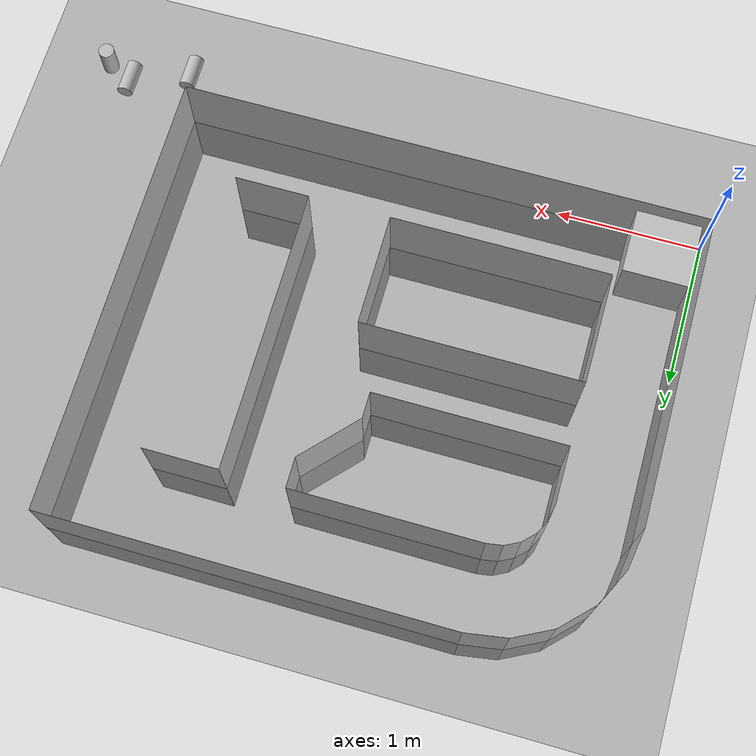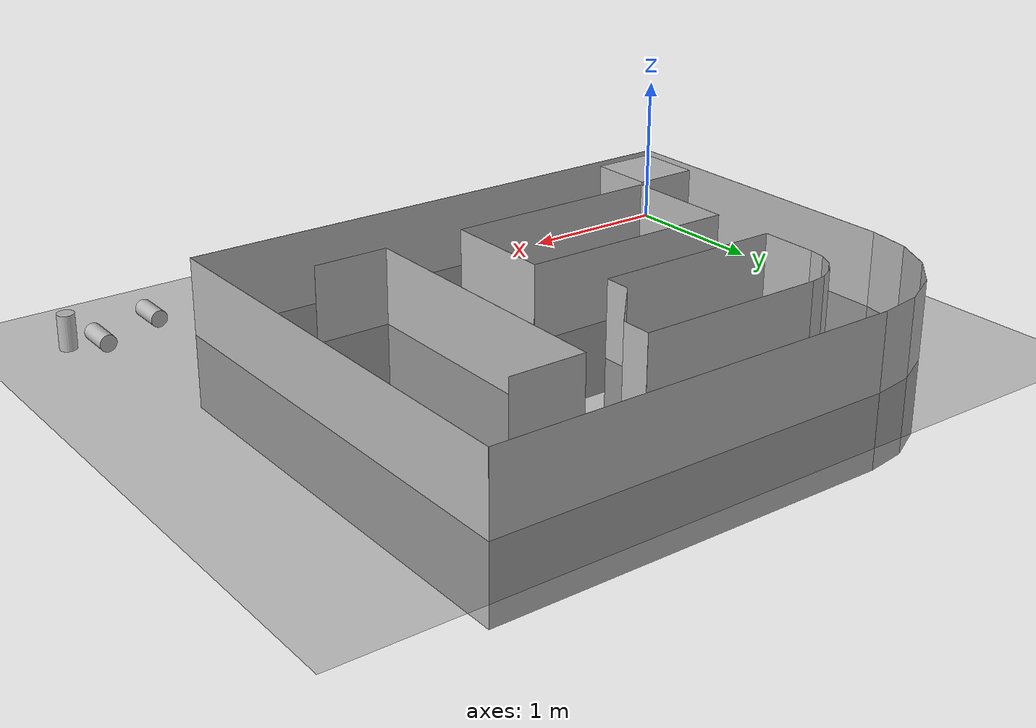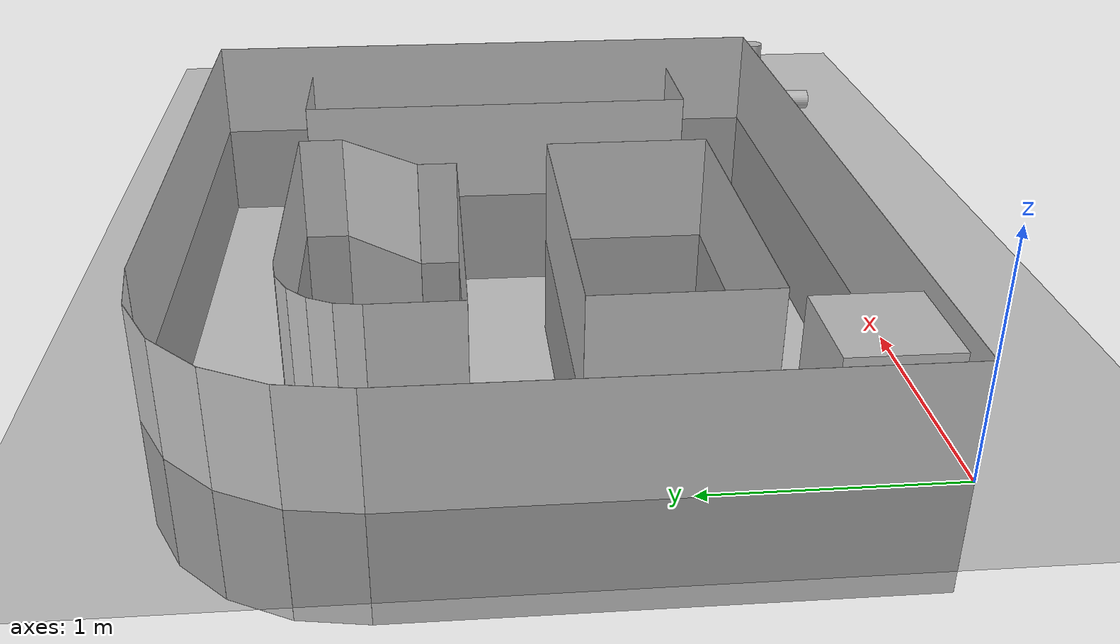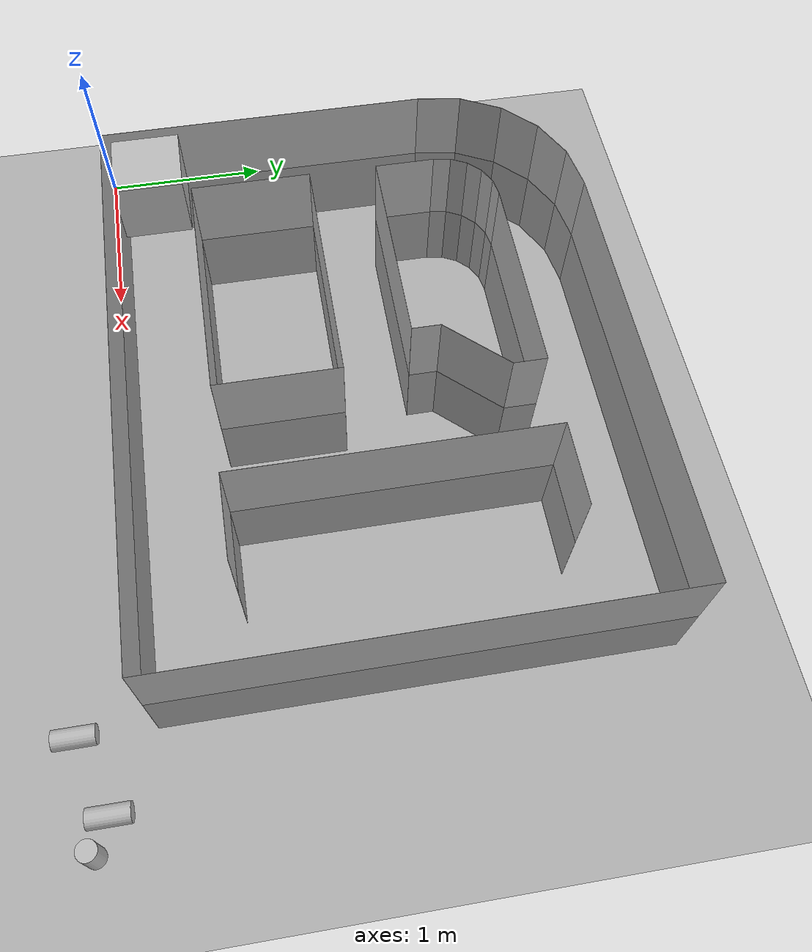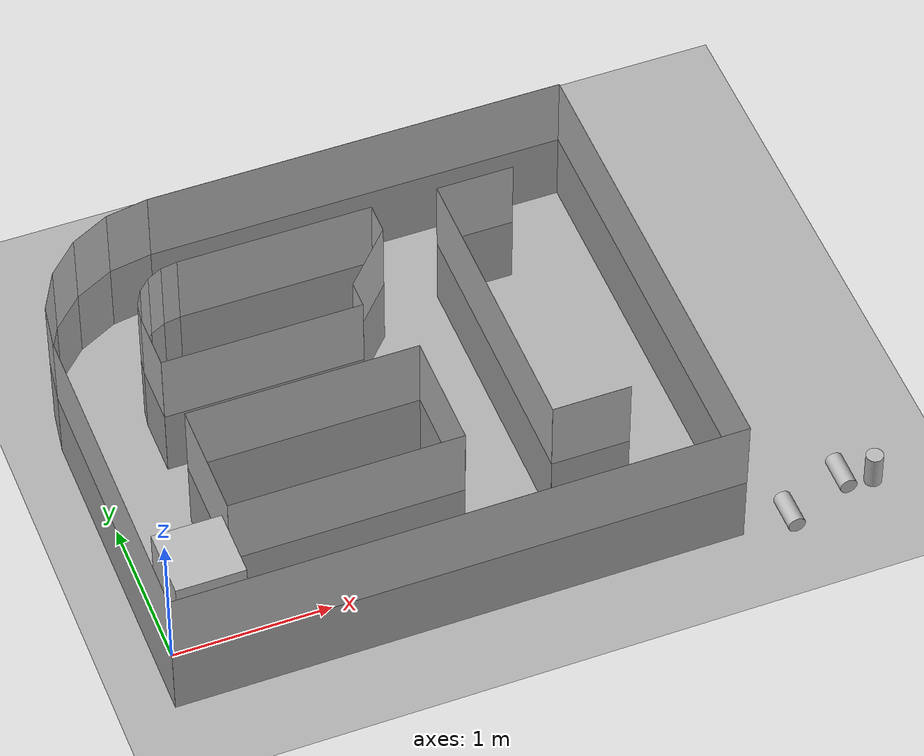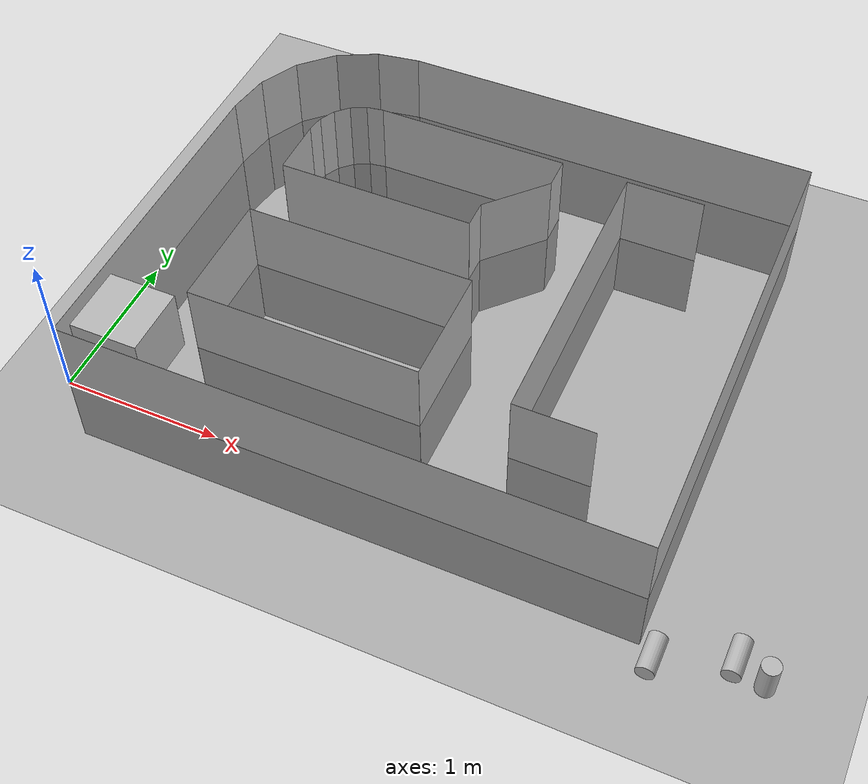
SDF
<sdf version="1.7">
 <world name="default">
  <light name="sun" type="directional">
   <pose>0 0 10 0 -0 0</pose>
   <diffuse>0.8 0.8 0.8 1</diffuse>
   <specular>0.1 0.1 0.1 1</specular>
   <attenuation>
    <range>1000</range>
    <constant>0.9</constant>
    <linear>0.01</linear>
    <quadratic>0.001</quadratic>
   </attenuation>
   <direction>-0.5 0.5 -1</direction>
   <spot><inner_angle>0</inner_angle><outer_angle>0</outer_angle><falloff>0</falloff></spot>
  </light>
  <model name="ground_plane">
   <static>1</static>
   <link name="link">
    <collision name="collision">
     <geometry><plane><normal>0 0 1</normal><size>100 100</size></plane></geometry>
     <surface><friction><ode><mu>100</mu><mu2>50</mu2></ode></friction></surface>
    </collision>
    <visual name="visual">
     <cast_shadows>0</cast_shadows>
     <geometry><plane><normal>0 0 1</normal><size>100 100</size></plane></geometry>
     <material>
      <script><uri>file://media/materials/scripts/gazebo.material</uri><name>Gazebo/DarkGrey</name></script>
     </material>
    </visual>
   </link>
  </model>
  <model name="wall_0">
   <static>1</static>
   <link name="link">
    <collision name="collision"><geometry><box><size>2.1336 0.001 1</size></box></geometry></collision>
    <visual name="visual">
     <geometry><box><size>2.1336 0.001 1</size></box></geometry>
     <material>
      <script><uri>model://fire/scripts</uri><uri>model://fire/textures</uri><name>Gazebo/Fire</name></script>
     </material>
    </visual>
   </link>
   <pose>0 1.0668 0 0 -0 1.5708</pose>
  </model>
  <model name="wall_1">
   <static>1</static>
   <link name="link">
    <collision name="collision"><geometry><box><size>0.286088 0.001 1</size></box></geometry></collision>
    <visual name="visual">
     <geometry><box><size>0.286088 0.001 1</size></box></geometry>
     <material>
      <script><uri>model://fire/scripts</uri><uri>model://fire/textures</uri><name>Gazebo/Fire</name></script>
     </material>
    </visual>
   </link>
   <pose>0.022377 2.27489 0 0 -0 1.41372</pose>
  </model>
  <model name="wall_2">
   <static>1</static>
   <link name="link">
    <collision name="collision"><geometry><box><size>0.286088 0.001 1</size></box></geometry></collision>
    <visual name="visual">
     <geometry><box><size>0.286088 0.001 1</size></box></geometry>
     <material>
      <script><uri>model://fire/scripts</uri><uri>model://fire/textures</uri><name>Gazebo/Fire</name></script>
     </material>
    </visual>
   </link>
   <pose>0.109695 2.54362 0 0 -0 1.09956</pose>
  </model>
  <model name="wall_3">
   <static>1</static>
   <link name="link">
    <collision name="collision"><geometry><box><size>0.286088 0.001 1</size></box></geometry></collision>
    <visual name="visual">
     <geometry><box><size>0.286088 0.001 1</size></box></geometry>
     <material>
      <script><uri>model://fire/scripts</uri><uri>model://fire/textures</uri><name>Gazebo/Fire</name></script>
     </material>
    </visual>
   </link>
   <pose>0.275783 2.77222 0 0 -0 0.785398</pose>
  </model>
  <model name="wall_4">
   <static>1</static>
   <link name="link">
    <collision name="collision"><geometry><box><size>0.286088 0.001 1</size></box></geometry></collision>
    <visual name="visual">
     <geometry><box><size>0.286088 0.001 1</size></box></geometry>
     <material>
      <script><uri>model://fire/scripts</uri><uri>model://fire/textures</uri><name>Gazebo/Fire</name></script>
     </material>
    </visual>
   </link>
   <pose>0.504383 2.93831 0 0 -0 0.471239</pose>
  </model>
  <model name="wall_5">
   <static>1</static>
   <link name="link">
    <collision name="collision"><geometry><box><size>0.286088 0.001 1</size></box></geometry></collision>
    <visual name="visual">
     <geometry><box><size>0.286088 0.001 1</size></box></geometry>
     <material>
      <script><uri>model://fire/scripts</uri><uri>model://fire/textures</uri><name>Gazebo/Fire</name></script>
     </material>
    </visual>
   </link>
   <pose>0.773119 3.02563 0 0 -0 0.15708</pose>
  </model>
  <model name="wall_6">
   <static>1</static>
   <link name="link">
    <collision name="collision"><geometry><box><size>2.74321 0.001 1</size></box></geometry></collision>
    <visual name="visual">
     <geometry><box><size>2.74321 0.001 1</size></box></geometry>
     <material>
      <script><uri>model://fire/scripts</uri><uri>model://fire/textures</uri><name>Gazebo/Fire</name></script>
     </material>
    </visual>
   </link>
   <pose>2.28607 3.04768 0 0 -0 0</pose>
  </model>
  <model name="wall_7">
   <static>1</static>
   <link name="link">
    <collision name="collision"><geometry><box><size>3.04801 0.001 1</size></box></geometry></collision>
    <visual name="visual">
     <geometry><box><size>3.04801 0.001 1</size></box></geometry>
     <material>
      <script><uri>model://fire/scripts</uri><uri>model://fire/textures</uri><name>Gazebo/Fire</name></script>
     </material>
    </visual>
   </link>
   <pose>3.65761 1.524 0 0 0 -1.5708</pose>
  </model>
  <model name="wall_8">
   <static>1</static>
   <link name="link">
    <collision name="collision"><geometry><box><size>3.65761 0.001 1</size></box></geometry></collision>
    <visual name="visual">
     <geometry><box><size>3.65761 0.001 1</size></box></geometry>
     <material>
      <script><uri>model://fire/scripts</uri><uri>model://fire/textures</uri><name>Gazebo/Fire</name></script>
     </material>
    </visual>
   </link>
   <pose>1.8288 0 0 0 0 -3.14159</pose>
  </model>
  <model name="wall_9">
   <static>1</static>
   <link name="link">
    <collision name="collision"><geometry><box><size>0.762002 0.001 1</size></box></geometry></collision>
    <visual name="visual">
     <geometry><box><size>0.762002 0.001 1</size></box></geometry>
     <material>
      <script><uri>model://fire/scripts</uri><uri>model://fire/textures</uri><name>Gazebo/Fire</name></script>
     </material>
    </visual>
   </link>
   <pose>0.558801 0.939802 0 0 -0 1.5708</pose>
  </model>
  <model name="wall_10">
   <static>1</static>
   <link name="link">
    <collision name="collision"><geometry><box><size>1.4986 0.001 1</size></box></geometry></collision>
    <visual name="visual">
     <geometry><box><size>1.4986 0.001 1</size></box></geometry>
     <material>
      <script><uri>model://fire/scripts</uri><uri>model://fire/textures</uri><name>Gazebo/Fire</name></script>
     </material>
    </visual>
   </link>
   <pose>1.3081 1.3208 0 0 -0 0</pose>
  </model>
  <model name="wall_11">
   <static>1</static>
   <link name="link">
    <collision name="collision"><geometry><box><size>0.762002 0.001 1</size></box></geometry></collision>
    <visual name="visual">
     <geometry><box><size>0.762002 0.001 1</size></box></geometry>
     <material>
      <script><uri>model://fire/scripts</uri><uri>model://fire/textures</uri><name>Gazebo/Fire</name></script>
     </material>
    </visual>
   </link>
   <pose>2.0574 0.939802 0 0 0 -1.5708</pose>
  </model>
  <model name="wall_12">
   <static>1</static>
   <link name="link">
    <collision name="collision"><geometry><box><size>1.4986 0.001 1</size></box></geometry></collision>
    <visual name="visual">
     <geometry><box><size>1.4986 0.001 1</size></box></geometry>
     <material>
      <script><uri>model://fire/scripts</uri><uri>model://fire/textures</uri><name>Gazebo/Fire</name></script>
     </material>
    </visual>
   </link>
   <pose>1.3081 0.558801 0 0 0 -3.14159</pose>
  </model>
  <model name="wall_13">
   <static>1</static>
   <link name="link">
    <collision name="collision"><geometry><box><size>0.381001 0.001 1</size></box></geometry></collision>
    <visual name="visual">
     <geometry><box><size>0.381001 0.001 1</size></box></geometry>
     <material>
      <script><uri>model://fire/scripts</uri><uri>model://fire/textures</uri><name>Gazebo/Fire</name></script>
     </material>
    </visual>
   </link>
   <pose>0.558801 1.9431 0 0 -0 1.5708</pose>
  </model>
  <model name="wall_14">
   <static>1</static>
   <link name="link">
    <collision name="collision"><geometry><box><size>0.111256 0.001 1</size></box></geometry></collision>
    <visual name="visual">
     <geometry><box><size>0.111256 0.001 1</size></box></geometry>
     <material>
      <script><uri>model://fire/scripts</uri><uri>model://fire/textures</uri><name>Gazebo/Fire</name></script>
     </material>
    </visual>
   </link>
   <pose>0.567503 2.18855 0 0 -0 1.41372</pose>
  </model>
  <model name="wall_15">
   <static>1</static>
   <link name="link">
    <collision name="collision"><geometry><box><size>0.111256 0.001 1</size></box></geometry></collision>
    <visual name="visual">
     <geometry><box><size>0.111256 0.001 1</size></box></geometry>
     <material>
      <script><uri>model://fire/scripts</uri><uri>model://fire/textures</uri><name>Gazebo/Fire</name></script>
     </material>
    </visual>
   </link>
   <pose>0.60146 2.29306 0 0 -0 1.09956</pose>
  </model>
  <model name="wall_16">
   <static>1</static>
   <link name="link">
    <collision name="collision"><geometry><box><size>0.111256 0.001 1</size></box></geometry></collision>
    <visual name="visual">
     <geometry><box><size>0.111256 0.001 1</size></box></geometry>
     <material>
      <script><uri>model://fire/scripts</uri><uri>model://fire/textures</uri><name>Gazebo/Fire</name></script>
     </material>
    </visual>
   </link>
   <pose>0.66605 2.38196 0 0 -0 0.785398</pose>
  </model>
  <model name="wall_17">
   <static>1</static>
   <link name="link">
    <collision name="collision"><geometry><box><size>0.111256 0.001 1</size></box></geometry></collision>
    <visual name="visual">
     <geometry><box><size>0.111256 0.001 1</size></box></geometry>
     <material>
      <script><uri>model://fire/scripts</uri><uri>model://fire/textures</uri><name>Gazebo/Fire</name></script>
     </material>
    </visual>
   </link>
   <pose>0.75495 2.44655 0 0 -0 0.471239</pose>
  </model>
  <model name="wall_18">
   <static>1</static>
   <link name="link">
    <collision name="collision"><geometry><box><size>0.111256 0.001 1</size></box></geometry></collision>
    <visual name="visual">
     <geometry><box><size>0.111256 0.001 1</size></box></geometry>
     <material>
      <script><uri>model://fire/scripts</uri><uri>model://fire/textures</uri><name>Gazebo/Fire</name></script>
     </material>
    </visual>
   </link>
   <pose>0.859458 2.4805 0 0 -0 0.15708</pose>
  </model>
  <model name="wall_19">
   <static>1</static>
   <link name="link">
    <collision name="collision"><geometry><box><size>1.27 0.001 1</size></box></geometry></collision>
    <visual name="visual">
     <geometry><box><size>1.27 0.001 1</size></box></geometry>
     <material>
      <script><uri>model://fire/scripts</uri><uri>model://fire/textures</uri><name>Gazebo/Fire</name></script>
     </material>
    </visual>
   </link>
   <pose>1.5494 2.48921 0 0 -0 0</pose>
  </model>
  <model name="wall_20">
   <static>1</static>
   <link name="link">
    <collision name="collision"><geometry><box><size>0.2032 0.001 1</size></box></geometry></collision>
    <visual name="visual">
     <geometry><box><size>0.2032 0.001 1</size></box></geometry>
     <material>
      <script><uri>model://fire/scripts</uri><uri>model://fire/textures</uri><name>Gazebo/Fire</name></script>
     </material>
    </visual>
   </link>
   <pose>2.1844 2.38761 0 0 0 -1.5708</pose>
  </model>
  <model name="wall_21">
   <static>1</static>
   <link name="link">
    <collision name="collision"><geometry><box><size>0.485267 0.001 1</size></box></geometry></collision>
    <visual name="visual">
     <geometry><box><size>0.485267 0.001 1</size></box></geometry>
     <material>
      <script><uri>model://fire/scripts</uri><uri>model://fire/textures</uri><name>Gazebo/Fire</name></script>
     </material>
    </visual>
   </link>
   <pose>2.0193 2.1082 0 0 0 -2.31917</pose>
  </model>
  <model name="wall_22">
   <static>1</static>
   <link name="link">
    <collision name="collision"><geometry><box><size>0.1778 0.001 1</size></box></geometry></collision>
    <visual name="visual">
     <geometry><box><size>0.1778 0.001 1</size></box></geometry>
     <material>
      <script><uri>model://fire/scripts</uri><uri>model://fire/textures</uri><name>Gazebo/Fire</name></script>
     </material>
    </visual>
   </link>
   <pose>1.8542 1.8415 0 0 0 -1.5708</pose>
  </model>
  <model name="wall_23">
   <static>1</static>
   <link name="link">
    <collision name="collision"><geometry><box><size>1.2954 0.001 1</size></box></geometry></collision>
    <visual name="visual">
     <geometry><box><size>1.2954 0.001 1</size></box></geometry>
     <material>
      <script><uri>model://fire/scripts</uri><uri>model://fire/textures</uri><name>Gazebo/Fire</name></script>
     </material>
    </visual>
   </link>
   <pose>1.2065 1.7526 0 0 0 -3.14159</pose>
  </model>
  <model name="wall_24">
   <static>1</static>
   <link name="link">
    <collision name="collision"><geometry><box><size>0.508001 0.001 1</size></box></geometry></collision>
    <visual name="visual">
     <geometry><box><size>0.508001 0.001 1</size></box></geometry>
     <material>
      <script><uri>model://fire/scripts</uri><uri>model://fire/textures</uri><name>Gazebo/Fire</name></script>
     </material>
    </visual>
   </link>
   <pose>2.87021 2.48921 0 0 -0 0</pose>
  </model>
  <model name="wall_25">
   <static>1</static>
   <link name="link">
    <collision name="collision"><geometry><box><size>0.508001 0.001 1</size></box></geometry></collision>
    <visual name="visual">
     <geometry><box><size>0.508001 0.001 1</size></box></geometry>
     <material>
      <script><uri>model://fire/scripts</uri><uri>model://fire/textures</uri><name>Gazebo/Fire</name></script>
     </material>
    </visual>
   </link>
   <pose>2.87021 0.558801 0 0 0 -3.14159</pose>
  </model>
  <model name="wall_26">
   <static>1</static>
   <link name="link">
    <collision name="collision"><geometry><box><size>1.9304 0.001 1</size></box></geometry></collision>
    <visual name="visual">
     <geometry><box><size>1.9304 0.001 1</size></box></geometry>
     <material>
      <script><uri>model://fire/scripts</uri><uri>model://fire/textures</uri><name>Gazebo/Fire</name></script>
     </material>
    </visual>
   </link>
   <pose>2.6162 1.524 0 0 -0 1.5708</pose>
  </model>
  <gravity>0 0 -9.8</gravity>
  <magnetic_field>6e-06 2.3e-05 -4.2e-05</magnetic_field>
  <atmosphere type="adiabatic"/>
  <physics name="default_physics" default="0" type="ode">
   <max_step_size>0.001</max_step_size>
   <real_time_factor>1</real_time_factor>
   <real_time_update_rate>1000</real_time_update_rate>
  </physics>
  <scene><ambient>0.4 0.4 0.4 1</ambient><background>0.7 0.7 0.7 1</background><shadows>1</shadows></scene>
  <spherical_coordinates>
   <surface_model>EARTH_WGS84</surface_model>
   <latitude_deg>0</latitude_deg>
   <longitude_deg>0</longitude_deg>
   <elevation>0</elevation>
   <heading_deg>0</heading_deg>
  </spherical_coordinates>
  <model name="cat_box">
   <static>1</static>
   <link name="cat_box">
    <visual name="visual">
     <geometry>
      <mesh><uri>model://cat_box/meshes/cat_box.dae</uri><scale>0.219854 0.219854 0.219854</scale></mesh>
     </geometry>
     <material>
      <script>
       <uri>model://cat_box/materials/scripts</uri>
       <uri>model://cat_box/materials/textures</uri>
       <name>animal_box/cat</name>
      </script>
     </material>
    </visual>
   </link>
   <pose>0.286146 0.287376 0.27404 0 -0 0</pose>
  </model>
  <model name="beer">
   <link name="link">
    <pose>0 0 0.115 0 -0 0</pose>
    <inertial>
     <mass>0.39</mass>
     <inertia><ixx>0.00058</ixx><ixy>0</ixy><ixz>0</ixz><iyy>0.00058</iyy><iyz>0</iyz><izz>0.00019</izz></inertia>
    </inertial>
    <collision name="collision">
     <geometry><cylinder><radius>0.055</radius><length>0.23</length></cylinder></geometry>
    </collision>
    <visual name="visual">
     <geometry><cylinder><radius>0.055</radius><length>0.23</length></cylinder></geometry>
     <material>
      <script>
       <uri>model://beer/materials/scripts</uri>
       <uri>model://beer/materials/textures</uri>
       <name>Beer/Diffuse</name>
      </script>
     </material>
    </visual>
   </link>
   <pose>4.19552 -0.063326 0.055 -1.57231 -1.33416 3.1383</pose>
  </model>
  <model name="beer_0">
   <link name="link">
    <pose>0 0 0.115 0 -0 0</pose>
    <inertial>
     <mass>0.39</mass>
     <inertia><ixx>0.00058</ixx><ixy>0</ixy><ixz>0</ixz><iyy>0.00058</iyy><iyz>0</iyz><izz>0.00019</izz></inertia>
    </inertial>
    <collision name="collision">
     <geometry><cylinder><radius>0.055</radius><length>0.23</length></cylinder></geometry>
    </collision>
    <visual name="visual">
     <geometry><cylinder><radius>0.055</radius><length>0.23</length></cylinder></geometry>
     <material>
      <script>
       <uri>model://beer/materials/scripts</uri>
       <uri>model://beer/materials/textures</uri>
       <name>Beer/Diffuse</name>
      </script>
     </material>
    </visual>
   </link>
   <pose>4.37072 -0.257689 0.000669 0.004331 0.011366 2.08006</pose>
  </model>
  <model name="beer_1">
   <link name="link">
    <pose>0 0 0.115 0 -0 0</pose>
    <inertial>
     <mass>0.39</mass>
     <inertia><ixx>0.00058</ixx><ixy>0</ixy><ixz>0</ixz><iyy>0.00058</iyy><iyz>0</iyz><izz>0.00019</izz></inertia>
    </inertial>
    <collision name="collision">
     <geometry><cylinder><radius>0.055</radius><length>0.23</length></cylinder></geometry>
    </collision>
    <visual name="visual">
     <geometry><cylinder><radius>0.055</radius><length>0.23</length></cylinder></geometry>
     <material>
      <script>
       <uri>model://beer/materials/scripts</uri>
       <uri>model://beer/materials/textures</uri>
       <name>Beer/Diffuse</name>
      </script>
     </material>
    </visual>
   </link>
   <pose>3.78553 -0.456302 0.055 -1.57119 0.474519 -0.000182</pose>
  </model>
 </world>
</sdf>
